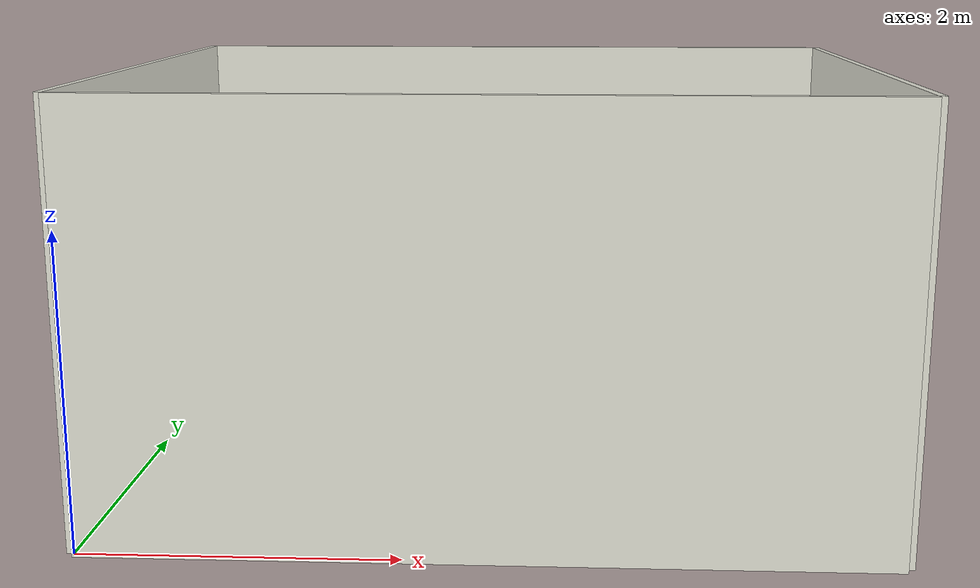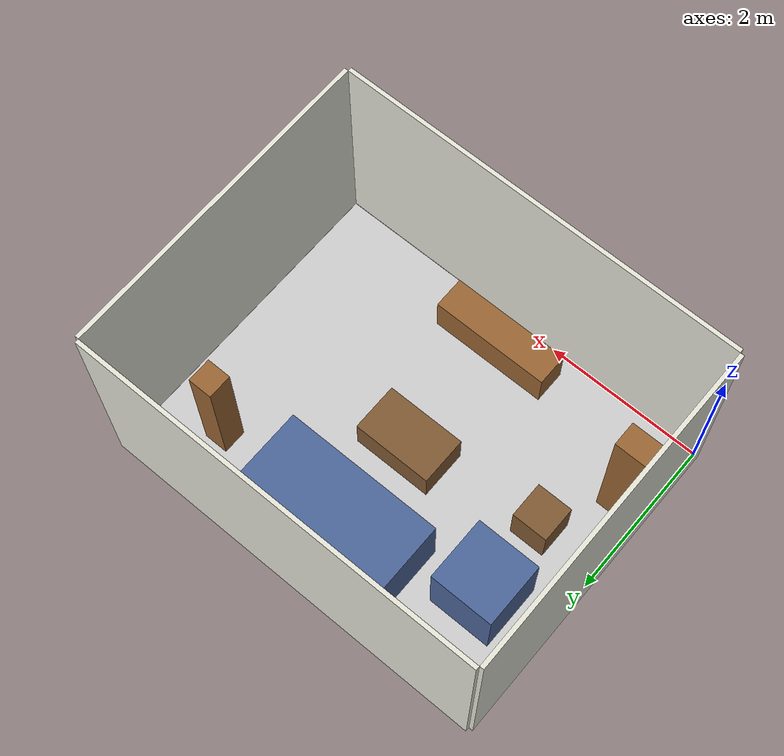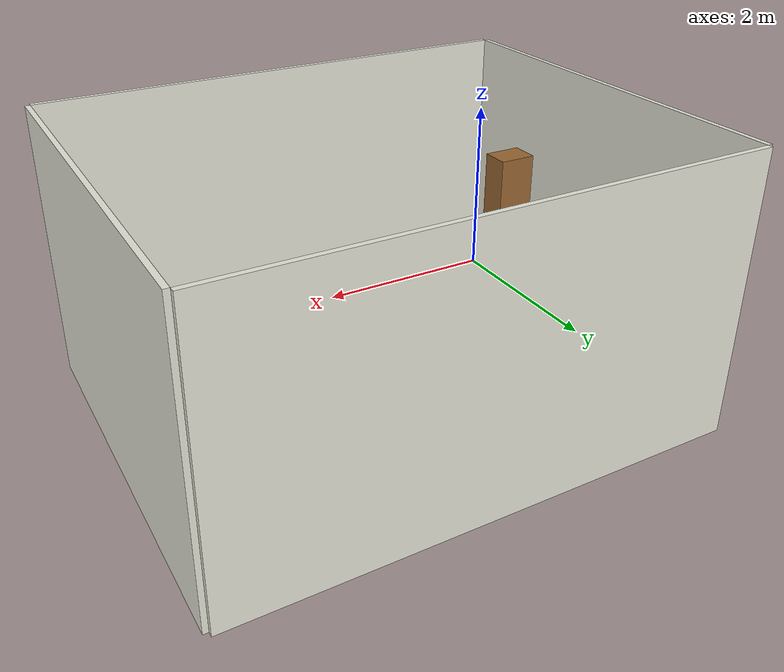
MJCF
<?xml version='1.0' encoding='utf-8'?>
<mujoco model="scene_sim">
  <compiler angle="degree" coordinate="local" />
  <option timestep="0.002" gravity="0 0 -9.81" />
  <visual>
    <headlight ambient="0.5 0.5 0.5" />
  </visual>
  <asset>
    <material name="floor_mat" rgba="0.8 0.8 0.8 1" />
    <material name="wall_mat" rgba="0.9 0.9 0.85 1" />
    <material name="furniture_mat" rgba="0.6 0.4 0.2 1" />
    <material name="sofa_mat" rgba="0.3 0.4 0.6 1" />
    <material name="table_mat" rgba="0.5 0.35 0.2 1" />
  </asset>
  <worldbody>
    <light pos="2.5 2.0 2.6999999999999997" dir="0 0 -1" diffuse="0.8 0.8 0.8" />
    <geom name="floor" type="plane" size="2.5 2.0 0.01" pos="2.5 2.0 0" material="floor_mat" />
    <geom name="wall_bottom" type="box" size="2.5 0.025 1.4" pos="2.5 -0.025 1.4" material="wall_mat" />
    <geom name="wall_top" type="box" size="2.5 0.025 1.4" pos="2.5 4.025 1.4" material="wall_mat" />
    <geom name="wall_left" type="box" size="0.025 2.0 1.4" pos="-0.025 2.0 1.4" material="wall_mat" />
    <geom name="wall_right" type="box" size="0.025 2.0 1.4" pos="5.025 2.0 1.4" material="wall_mat" />
    <body name="sofa_0" pos="2.5 3.2 0.425">
      <freejoint name="sofa_0_joint" />
      <geom name="sofa_0_geom" type="box" size="1.0 0.45 0.425" material="sofa_mat" density="200" />
    </body>
    <body name="tv_stand_0" pos="2.5 0.4 0.25">
      <freejoint name="tv_stand_0_joint" />
      <geom name="tv_stand_0_geom" type="box" size="0.75 0.2 0.25" material="furniture_mat" density="200" />
    </body>
    <body name="coffee_table_0" pos="2.5 2.0 0.225">
      <freejoint name="coffee_table_0_joint" />
      <geom name="coffee_table_0_geom" type="box" size="0.5 0.3 0.225" material="table_mat" density="200" />
    </body>
    <body name="armchair_0" pos="0.8 2.8 0.45">
      <freejoint name="armchair_0_joint" />
      <geom name="armchair_0_geom" type="box" size="0.4 0.4 0.45" material="sofa_mat" density="200" />
    </body>
    <body name="bookshelf_0" pos="0.3 1.0 0.9">
      <freejoint name="bookshelf_0_joint" />
      <geom name="bookshelf_0_geom" type="box" size="0.2 0.15 0.9" material="furniture_mat" density="200" />
    </body>
    <body name="floor_lamp_0" pos="4.2 3.2 0.8">
      <freejoint name="floor_lamp_0_joint" />
      <geom name="floor_lamp_0_geom" type="box" size="0.15 0.15 0.8" material="furniture_mat" density="100" />
    </body>
    <body name="side_table_0" pos="0.8 1.8 0.275">
      <freejoint name="side_table_0_joint" />
      <geom name="side_table_0_geom" type="box" size="0.225 0.225 0.275" material="table_mat" density="200" />
    </body>
  </worldbody>
</mujoco>
